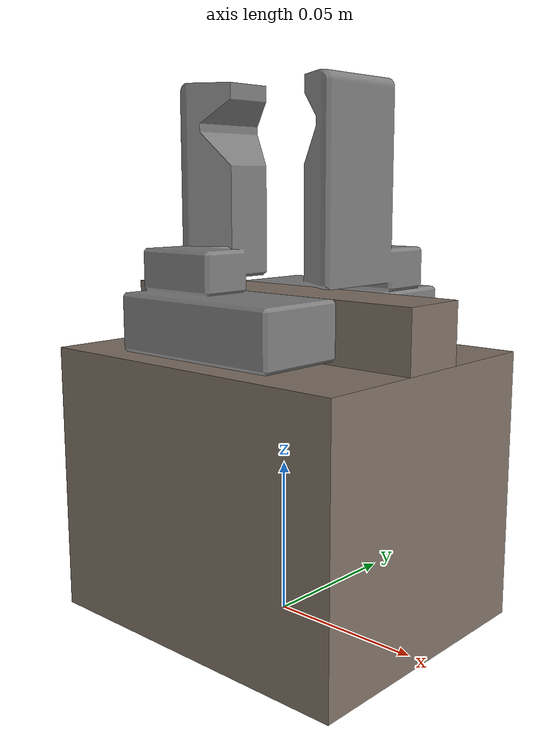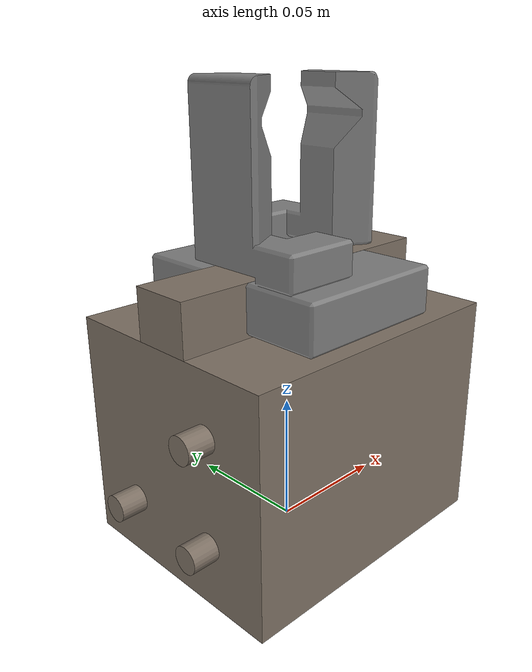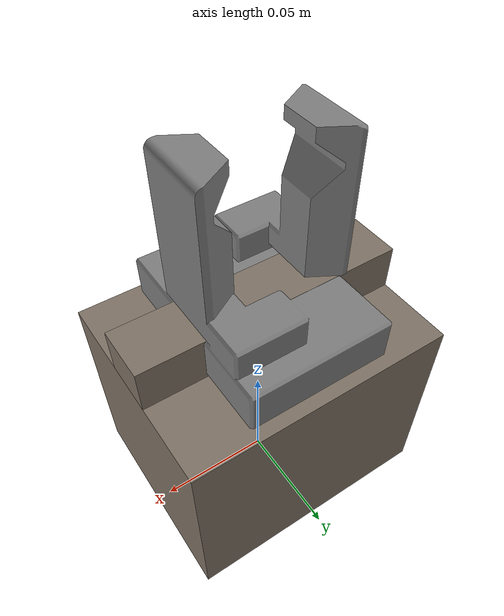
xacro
<?xml version="1.0"?>
<robot name="egl90" xmlns:xacro="http://www.ros.org/wiki/xacro">
  <xacro:include filename="$(find schunk_gripper_egl90)/urdf/egl90_macro.xacro"/>

  <link name="world"/>
  <xacro:egl90 parent="world" prefix="">
      <origin xyz="0 0 0" rpy="0 0 0"/>
  </xacro:egl90>

  <xacro:egl90-jaws prefix="" x="0.0" min="-0.015" max="0.026">
    <mesh filename="package://schunk_gripper_egl90/meshes/finger.stl"/>
  </xacro:egl90-jaws>
</robot>

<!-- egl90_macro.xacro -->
<robot name="egl90" xmlns:xacro="http://www.ros.org/wiki/xacro">
  <material name="egl90-metal">
    <color rgba="0.5 0.45 0.4 1"/>
  </material>
  <xacro:property name="base_x" value="0.112"/>
  <xacro:property name="base_y" value="0.090"/>
  <xacro:property name="base_z" value="0.08725"/>
  <xacro:property name="jaw_base_y" value="0.0228"/>
  <xacro:property name="jaw_base_z" value="0.0191"/>

  <xacro:macro name="egl90-jaws" params="prefix x min max *mesh">
    <joint name="egl_position" type="prismatic">
      <parent link="${prefix}jaw_base"/>
      <child link="${prefix}finger_right"/>
      <origin rpy="0.0 0.0 ${pi}" xyz="${x} -0.0255 -0.018"/>
      <axis xyz="1 0 0"/>
      <limit effort="100.0" lower="${min}" upper="${max}" velocity="100.0"/>
    </joint>
    <link name="${prefix}finger_right">
      <visual>
        <geometry>
          <xacro:insert_block name="mesh"/>
        </geometry>
        <material name="grey ">
          <color rgba="0.5 0.5 0.5 1.0"/>
        </material>
      </visual>
      <collision>
        <geometry>
          <xacro:insert_block name="mesh"/>
        </geometry>
      </collision>
    </link>
    <joint name="egl_position_mimic" type="prismatic">
      <parent link="${prefix}jaw_base"/>
      <child link="${prefix}finger_left"/>
      <origin rpy="0.0 0.0 0.0" xyz="${x} 0.0255 -0.018"/>
      <axis xyz="1 0 0"/>
      <limit effort="100.0" lower="${min}" upper="${max}" velocity="100.0"/>
      <mimic joint="egl_position" multiplier="1"/>
    </joint>
    <link name="${prefix}finger_left">
      <visual>
        <geometry>
          <xacro:insert_block name="mesh"/>
        </geometry>
        <material name="grey ">
          <color rgba="0.5 0.5 0.5 1.0"/>
        </material>
      </visual>
      <collision>
        <geometry>
          <xacro:insert_block name="mesh"/>
        </geometry>
      </collision>
    </link>
  </xacro:macro>

  <!-- Added to figure out orientation -->
  <xacro:macro name="egl90-connector" params="y z">
    <visual>
      <origin rpy="0 1.5708 0" xyz="${-base_x/2 - 0.005} ${y} ${base_z/2 + z}"/>
      <geometry>
        <cylinder length="0.01" radius="0.005"/>
      </geometry>
      <material name="egl90-metal"/>
    </visual>
  </xacro:macro>
  <xacro:macro name="egl90" params="parent prefix *origin">
    <joint name="${prefix}mount" type="fixed">
      <xacro:insert_block name="origin"/>
      <parent link="${parent}"/>
      <child link="${prefix}base"/>
    </joint>
    <link name="${prefix}base">
      <visual>
        <origin rpy="0 0 0" xyz="0 0 ${base_z/2}"/>
        <geometry>
          <box size="${base_x} ${base_y} ${base_z}"/>
        </geometry>
        <material name="egl90-metal"/>
      </visual>
      <xacro:egl90-connector y="-0.02" z="0.02"/>
      <xacro:egl90-connector y="-0.02" z="-0.02"/>
      <xacro:egl90-connector y="0.02" z="-0.02"/>
    </link>
    <joint name="${prefix}jaw_mount" type="fixed">
      <origin rpy="0 0 0" xyz="0 0 ${base_z + jaw_base_z}"/>
      <parent link="${prefix}base"/>
      <child link="${prefix}jaw_base"/>
    </joint>
    <link name="${prefix}jaw_base">
      <visual>
        <origin rpy="0 0 0" xyz="0 0 ${-jaw_base_z/2}"/>
        <geometry>
          <box size="${base_x} ${jaw_base_y} ${jaw_base_z}"/>
        </geometry>
        <material name="egl90-metal"/>
      </visual>
    </link>
  </xacro:macro>
</robot>
